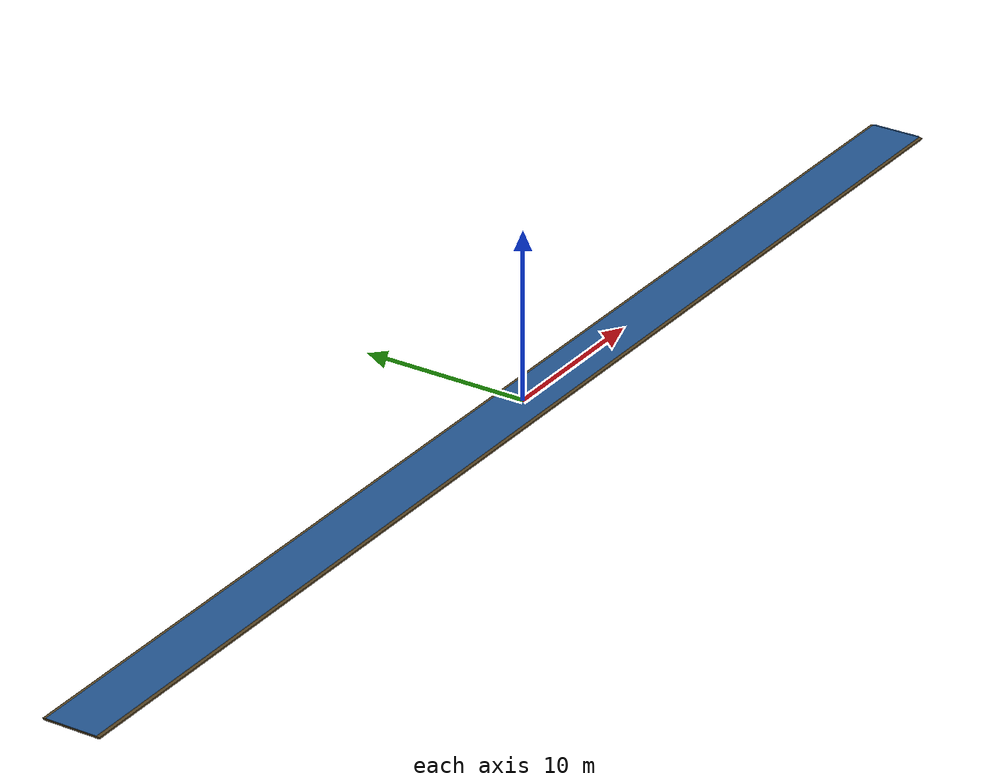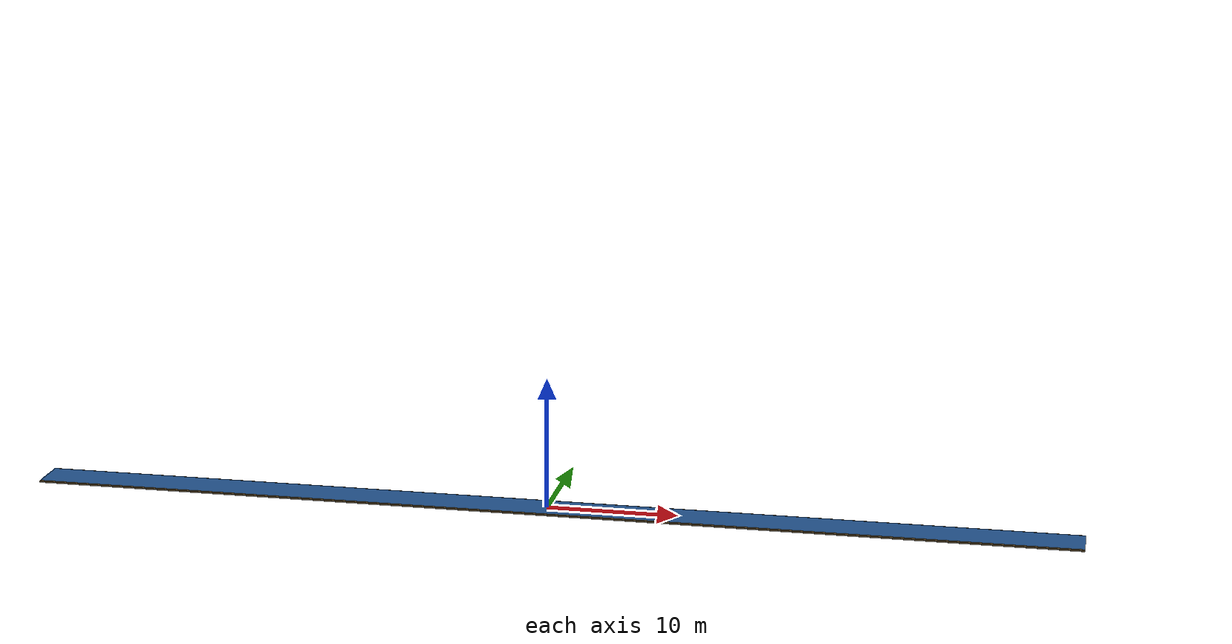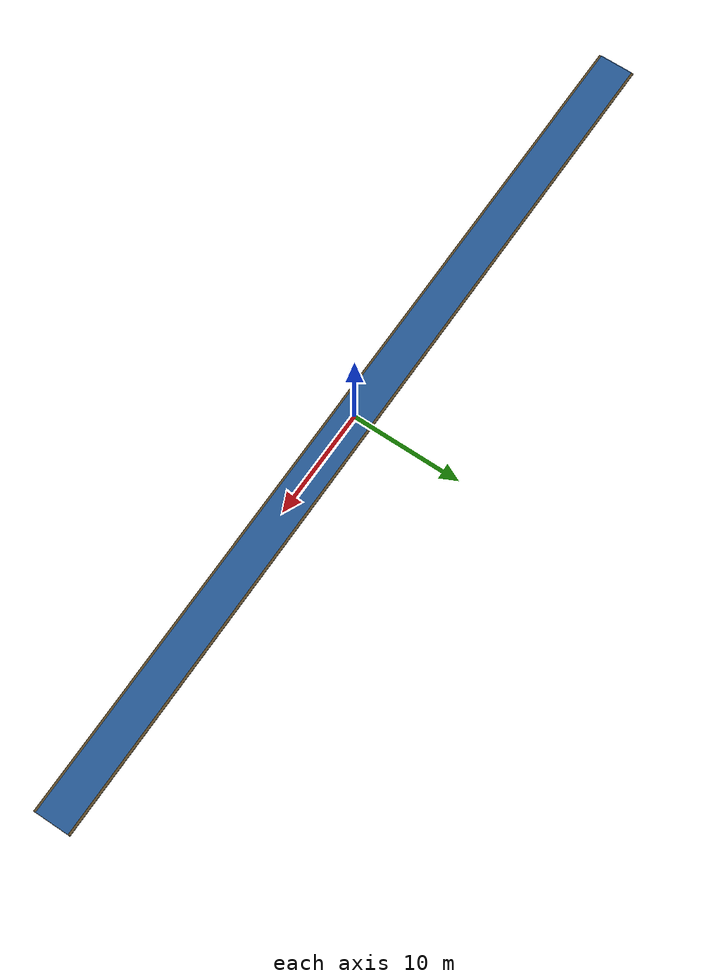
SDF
<?xml version="1.0" ?>
<sdf version="1.9">
  <!-- Irrigation canal / river strip. Visual-only blue water surface. -->
  <model name="river">
    <static>true</static>
    <link name="link">
      <visual name="water_surface">
        <cast_shadows>false</cast_shadows>
        <geometry>
          <box><size>80 3 0.05</size></box>
        </geometry>
        <material>
          <ambient>0.1 0.3 0.6 0.8</ambient>
          <diffuse>0.15 0.4 0.7 0.85</diffuse>
          <specular>0.6 0.6 0.7 1</specular>
        </material>
      </visual>
      <!-- Shallow riverbed -->
      <visual name="riverbed">
        <pose>0 0 -0.08 0 0 0</pose>
        <cast_shadows>false</cast_shadows>
        <geometry>
          <box><size>80 3.4 0.1</size></box>
        </geometry>
        <material>
          <ambient>0.25 0.2 0.12 1</ambient>
          <diffuse>0.35 0.28 0.15 1</diffuse>
          <specular>0.05 0.05 0.05 1</specular>
        </material>
      </visual>
    </link>
  </model>
</sdf>
